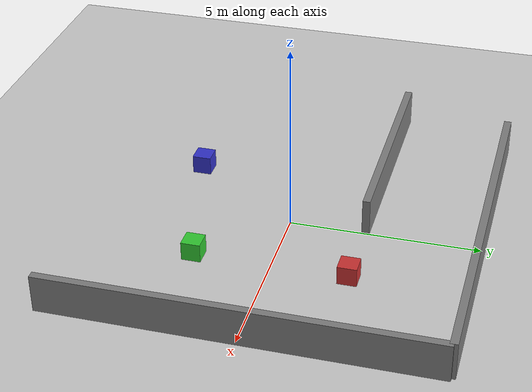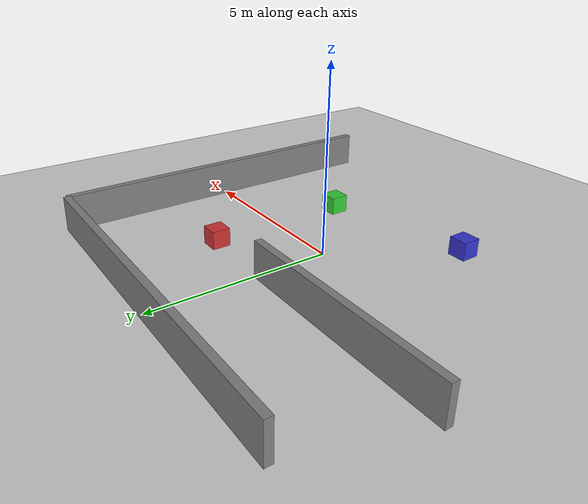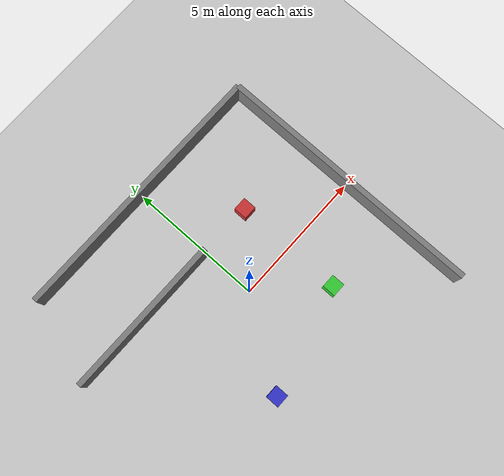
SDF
<?xml version="1.0" ?>

<sdf version="1.5">
    <world name="slam_test">
        <!-- Physics settings -->
        <physics type="ode">
            <max_step_size>0.001</max_step_size>
            <real_time_update_rate>1000</real_time_update_rate>
            <iters>50</iters>
        </physics>

        <!-- Global light source -->
        <include>
            <uri>model://sun</uri>
        </include>

        <!-- Ground plane -->
        <include>
            <uri>model://ground_plane</uri>
        </include>

        <!-- Wall 1 - Long wall -->
        <model name="wall_1">
            <static>true</static>
            <pose>5 0 0.5 0 0 0</pose>
            <link name="link">
                <collision name="collision">
                    <geometry>
                        <box>
                            <size>0.2 10 1</size>
                        </box>
                    </geometry>
                </collision>
                <visual name="visual">
                    <geometry>
                        <box>
                            <size>0.2 10 1</size>
                        </box>
                    </geometry>
                    <material>
                        <ambient>0.5 0.5 0.5 1</ambient>
                        <diffuse>0.5 0.5 0.5 1</diffuse>
                    </material>
                </visual>
            </link>
        </model>

        <!-- Wall 2 - Side wall -->
        <model name="wall_2">
            <static>true</static>
            <pose>0 5 0.5 0 0 1.57</pose>
            <link name="link">
                <collision name="collision">
                    <geometry>
                        <box>
                            <size>0.2 10 1</size>
                        </box>
                    </geometry>
                </collision>
                <visual name="visual">
                    <geometry>
                        <box>
                            <size>0.2 10 1</size>
                        </box>
                    </geometry>
                    <material>
                        <ambient>0.5 0.5 0.5 1</ambient>
                        <diffuse>0.5 0.5 0.5 1</diffuse>
                    </material>
                </visual>
            </link>
        </model>

        <!-- Wall 3 - Another wall -->
        <model name="wall_3">
            <static>true</static>
            <pose>-3 2 0.5 0 0 1.57</pose>
            <link name="link">
                <collision name="collision">
                    <geometry>
                        <box>
                            <size>0.2 6 1</size>
                        </box>
                    </geometry>
                </collision>
                <visual name="visual">
                    <geometry>
                        <box>
                            <size>0.2 6 1</size>
                        </box>
                    </geometry>
                    <material>
                        <ambient>0.5 0.5 0.5 1</ambient>
                        <diffuse>0.5 0.5 0.5 1</diffuse>
                    </material>
                </visual>
            </link>
        </model>

        <!-- Box obstacles -->
        <model name="box_1">
            <static>true</static>
            <pose>2 2 0.25 0 0 0</pose>
            <link name="link">
                <collision name="collision">
                    <geometry>
                        <box>
                            <size>0.5 0.5 0.5</size>
                        </box>
                    </geometry>
                </collision>
                <visual name="visual">
                    <geometry>
                        <box>
                            <size>0.5 0.5 0.5</size>
                        </box>
                    </geometry>
                    <material>
                        <ambient>0.8 0.2 0.2 1</ambient>
                        <diffuse>0.8 0.2 0.2 1</diffuse>
                    </material>
                </visual>
            </link>
        </model>

        <model name="box_2">
            <static>true</static>
            <pose>2 -2 0.25 0 0 0</pose>
            <link name="link">
                <collision name="collision">
                    <geometry>
                        <box>
                            <size>0.5 0.5 0.5</size>
                        </box>
                    </geometry>
                </collision>
                <visual name="visual">
                    <geometry>
                        <box>
                            <size>0.5 0.5 0.5</size>
                        </box>
                    </geometry>
                    <material>
                        <ambient>0.2 0.8 0.2 1</ambient>
                        <diffuse>0.2 0.8 0.2 1</diffuse>
                    </material>
                </visual>
            </link>
        </model>

        <model name="box_3">
            <static>true</static>
            <pose>-2 -3 0.25 0 0 0</pose>
            <link name="link">
                <collision name="collision">
                    <geometry>
                        <box>
                            <size>0.5 0.5 0.5</size>
                        </box>
                    </geometry>
                </collision>
                <visual name="visual">
                    <geometry>
                        <box>
                            <size>0.5 0.5 0.5</size>
                        </box>
                    </geometry>
                    <material>
                        <ambient>0.2 0.2 0.8 1</ambient>
                        <diffuse>0.2 0.2 0.8 1</diffuse>
                    </material>
                </visual>
            </link>
        </model>
    </world>
</sdf>
